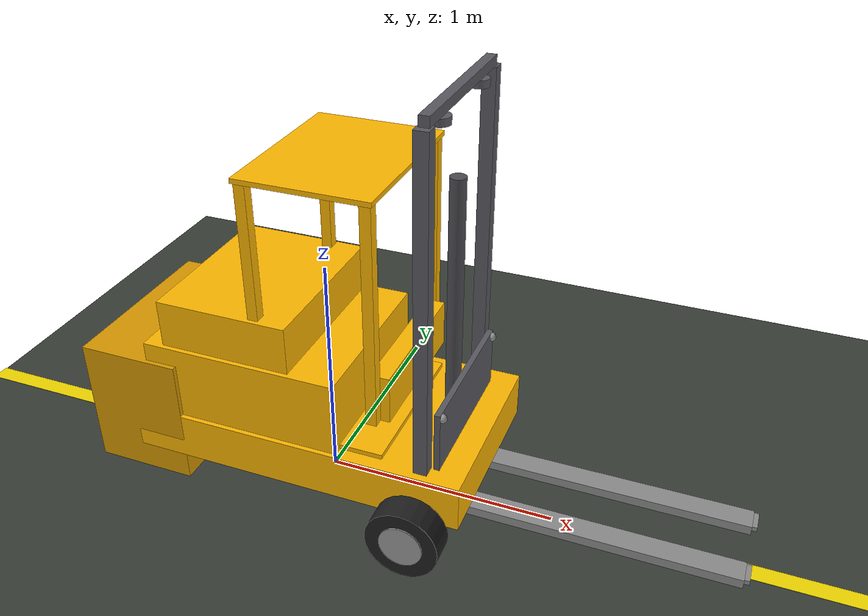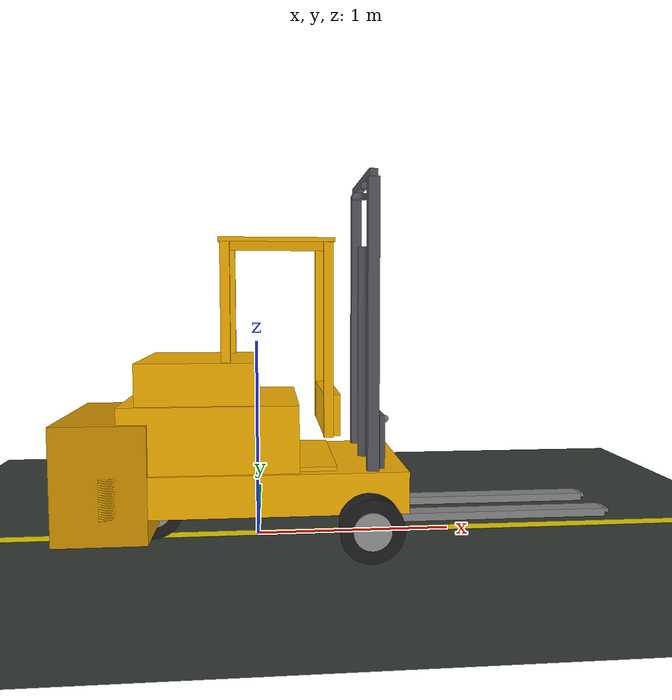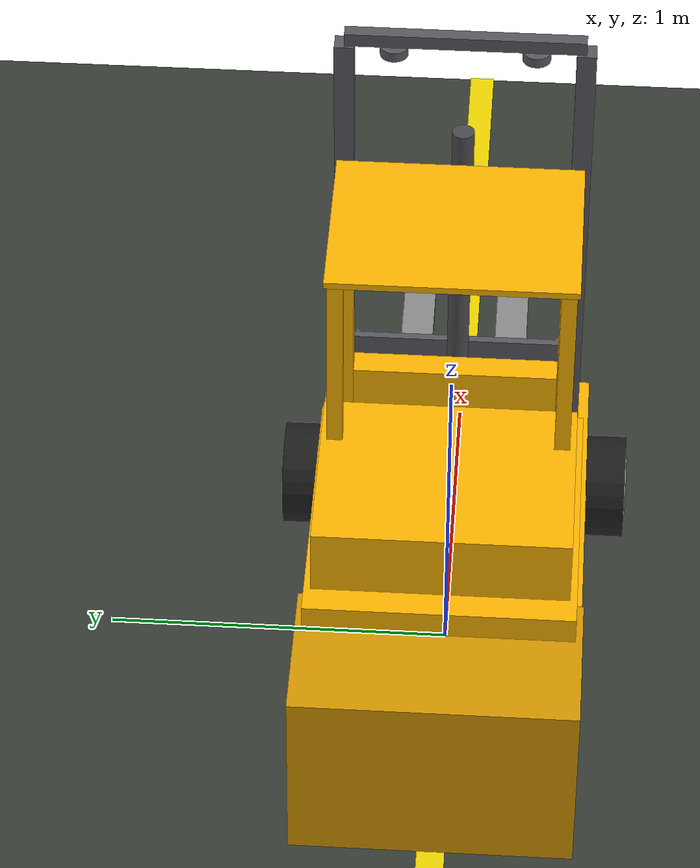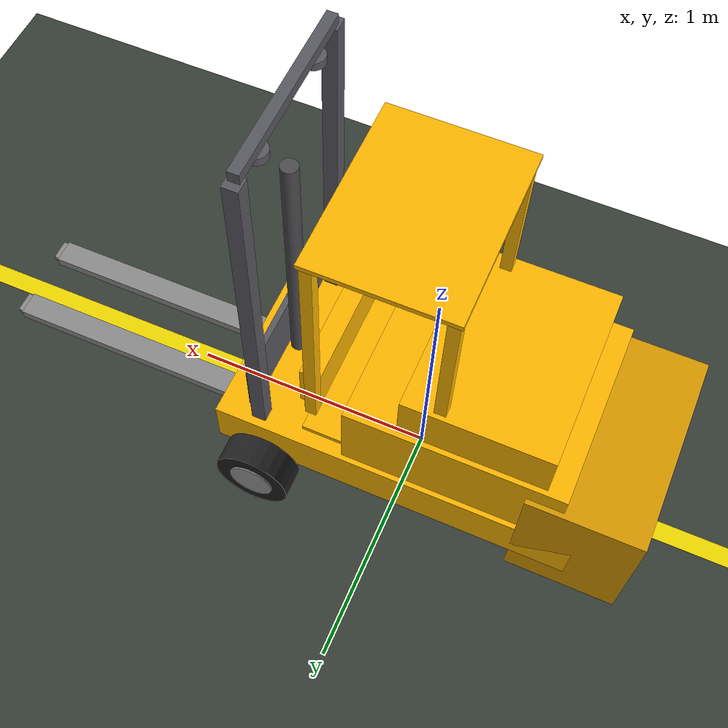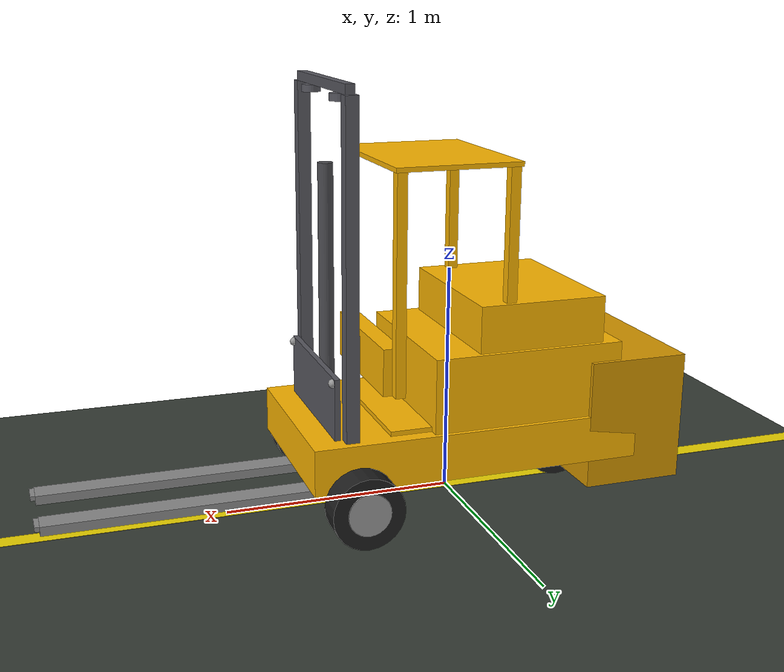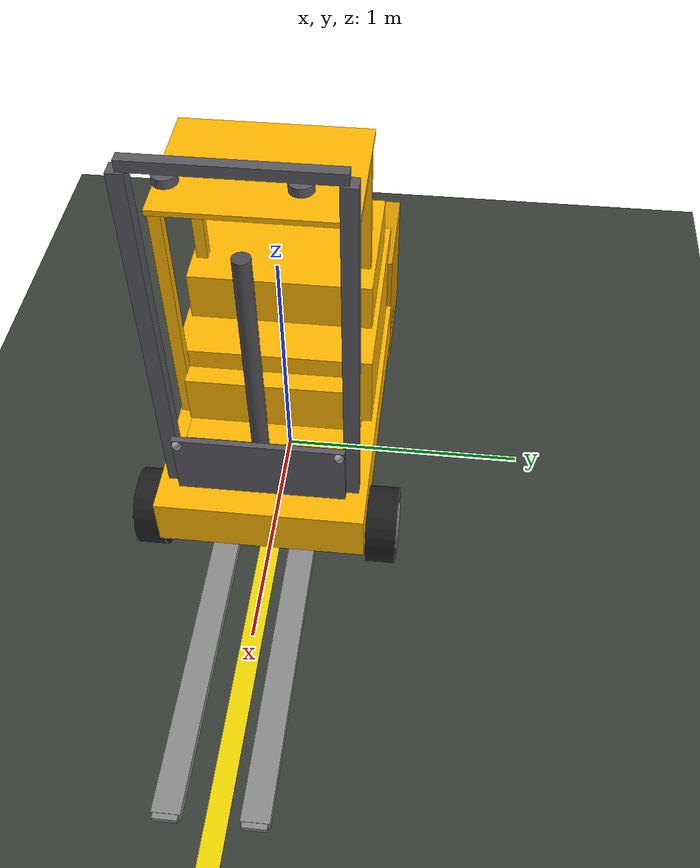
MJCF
<mujoco model="forklift_agv_1MBV15R30">
  <compiler angle="radian" autolimits="true"/>

  <option timestep="0.002" gravity="0 0 -9.81" integrator="implicitfast">
    <flag warmstart="enable"/>
  </option>

  <visual>
    <global offwidth="1920" offheight="1080"/>
  </visual>

  <default>
    <joint damping="80"/>
    <geom condim="4" friction="1.0 0.005 0.001" solimp="0.95 0.99 0.001 0.5 2" solref="0.01 1"/>
    <default class="wheel">
      <geom condim="4" friction="1.0 0.005 0.002" priority="1"
            solimp="0.95 0.99 0.001 0.5 2" solref="0.01 1"/>
    </default>
    <default class="fork">
      <geom friction="0.8 0.005 0.001" solimp="0.95 0.99 0.001 0.5 2" solref="0.01 1"/>
    </default>
    <default class="visual">
      <geom contype="0" conaffinity="0"/>
    </default>
  </default>

  <asset>
    <texture type="2d" name="groundplane" builtin="checker"
             rgb1="0.25 0.28 0.25" rgb2="0.18 0.20 0.18" width="512" height="512"/>
    <material name="groundplane" texture="groundplane" texrepeat="8 8" texuniform="true"/>
    <material name="chassis" rgba="1.0 0.72 0.0 1"/>
    <material name="counterweight" rgba="0.85 0.60 0.0 1"/>
    <material name="wheel_rubber" rgba="0.12 0.12 0.12 1"/>
    <material name="wheel_rim" rgba="0.6 0.6 0.6 1"/>
    <material name="fork_steel" rgba="0.55 0.55 0.55 1"/>
    <material name="mast_steel" rgba="0.35 0.35 0.38 1"/>
    <material name="guard" rgba="1.0 0.72 0.0 0.9"/>
    <material name="hydraulic" rgba="0.3 0.3 0.32 1"/>
    <material name="payload" rgba="0.6 0.45 0.3 1"/>
  </asset>

  <worldbody>
    <light directional="true" pos="3 3 8" dir="-0.3 -0.3 -1"
           diffuse="0.9 0.9 0.85" specular="0.3 0.3 0.3"/>
    <light directional="true" pos="-3 -3 6" dir="0.3 0.3 -1"
           diffuse="0.3 0.3 0.35"/>

    <geom name="ground" type="plane" size="25 25 0.1" material="groundplane"
          contype="1" conaffinity="30"/>

    <!-- Yellow guide line (visual only) — straight line at y=0 along x,
         tracked by the simulated front_low camera in the bridge. -->
    <geom name="guide_line" type="box" class="visual"
          size="20.0 0.04 0.001" pos="0 0 0.002"
          rgba="0.95 0.85 0.0 1"/>

    <!-- CHASSIS — origin between axles, 0.30m above ground               -->
    <!-- Front axle (2 drive) X=+0.528  |  Rear axle (1 steer) X=-0.528  -->
    <body name="chassis" pos="0 0 0.30">
      <freejoint name="root"/>
      <inertial pos="-0.10 0 0.06" mass="3200" diaginertia="500 900 1100"/>

      <!-- Lower chassis frame -->
      <geom name="chassis_lower" type="box"
            size="0.72 0.40 0.10" pos="0 0 0"
            material="chassis" mass="1100"
            contype="8" conaffinity="17"/>

      <!-- Upper chassis / operator area -->
      <geom name="chassis_upper" type="box"
            size="0.42 0.38 0.16" pos="-0.22 0 0.26"
            material="chassis" mass="350"
            contype="8" conaffinity="17"/>

      <!-- Counterweight (rear) -->
      <geom name="counterweight" type="box"
            size="0.22 0.40 0.28" pos="-0.72 0 0.06"
            material="counterweight" mass="1100"
            contype="8" conaffinity="17"/>

      <!-- Battery compartment -->
      <geom name="battery_box" type="box"
            size="0.28 0.36 0.18" pos="-0.28 0 0.44"
            material="chassis" mass="400"
            contype="8" conaffinity="17"/>

      <!-- Operator platform -->
      <geom name="operator_floor" type="box" class="visual"
            size="0.28 0.34 0.01" pos="0.10 0 0.11"
            material="chassis" mass="30"/>

      <!-- Overhead guard -->
      <geom name="guard_fl" type="box" class="visual"
            size="0.022 0.022 0.46" pos="0.34 0.32 0.72" material="guard" mass="6"/>
      <geom name="guard_fr" type="box" class="visual"
            size="0.022 0.022 0.46" pos="0.34 -0.32 0.72" material="guard" mass="6"/>
      <geom name="guard_rl" type="box" class="visual"
            size="0.022 0.022 0.46" pos="-0.14 0.32 0.72" material="guard" mass="6"/>
      <geom name="guard_rr" type="box" class="visual"
            size="0.022 0.022 0.46" pos="-0.14 -0.32 0.72" material="guard" mass="6"/>
      <geom name="guard_roof" type="box" class="visual"
            size="0.27 0.35 0.01" pos="0.10 0 1.19" material="guard" mass="20"/>

      <!-- Dash panel -->
      <geom name="dash" type="box" class="visual"
            size="0.04 0.30 0.10" pos="0.36 0 0.36" material="chassis" mass="15"/>

      <!-- FRONT DRIVE WHEELS (2x, fork side)                           -->
      <!-- R=152.5mm, W=120mm, track=918mm                              -->
      <body name="wheel_fl" pos="0.528 0.459 -0.1475">
        <joint name="drive_fl" type="hinge" axis="0 1 0" damping="8"/>
        <geom name="tire_fl" type="cylinder" class="wheel"
              size="0.1525 0.06" euler="1.5708 0 0"
              material="wheel_rubber" mass="14"
              contype="2" conaffinity="17"/>
        <geom name="rim_fl" type="cylinder" class="visual"
              size="0.09 0.065" euler="1.5708 0 0"
              material="wheel_rim" mass="6"/>
      </body>

      <body name="wheel_fr" pos="0.528 -0.459 -0.1475">
        <joint name="drive_fr" type="hinge" axis="0 1 0" damping="8"/>
        <geom name="tire_fr" type="cylinder" class="wheel"
              size="0.1525 0.06" euler="1.5708 0 0"
              material="wheel_rubber" mass="14"
              contype="2" conaffinity="17"/>
        <geom name="rim_fr" type="cylinder" class="visual"
              size="0.09 0.065" euler="1.5708 0 0"
              material="wheel_rim" mass="6"/>
      </body>

      <!-- REAR STEER WHEEL (1x, centered, counterweight side)          -->
      <!-- R=153mm, W=110mm                                             -->
      <body name="rear_steer" pos="-0.528 0 -0.147">
        <inertial pos="0 0 0" mass="2" diaginertia="0.01 0.01 0.01"/>
        <joint name="steering" type="hinge" axis="0 0 1"
               range="-1.22 1.22" damping="250" stiffness="40"/>

        <body name="rear_wheel" pos="0 0 0">
          <joint name="roll_rear" type="hinge" axis="0 1 0" damping="12"/>
          <geom name="tire_rear" type="cylinder" class="wheel"
                size="0.153 0.055" euler="1.5708 0 0"
                material="wheel_rubber" mass="18"
                contype="2" conaffinity="17"/>
          <geom name="rim_rear" type="cylinder" class="visual"
                size="0.095 0.058" euler="1.5708 0 0"
                material="wheel_rim" mass="8"/>
        </body>
      </body>

      <!-- MAST ASSEMBLY (at front, tiltable)                           -->
      <body name="mast" pos="0.55 0 -0.02">
        <joint name="tilt" type="hinge" axis="0 1 0"
               range="-0.105 0.070" damping="2500" stiffness="2000" armature="50"/>

        <geom name="mast_left" type="box" class="visual"
              size="0.028 0.028 0.75" pos="0 0.34 0.75"
              material="mast_steel" mass="55"/>
        <geom name="mast_right" type="box" class="visual"
              size="0.028 0.028 0.75" pos="0 -0.34 0.75"
              material="mast_steel" mass="55"/>
        <geom name="mast_top_bar" type="box" class="visual"
              size="0.02 0.34 0.02" pos="0 0 1.52"
              material="mast_steel" mass="12"/>
        <geom name="mast_bot_bar" type="box" class="visual"
              size="0.02 0.26 0.02" pos="0 0 0.02"
              material="mast_steel" mass="10"/>
        <geom name="pulley_l" type="cylinder" class="visual"
              size="0.04 0.015" pos="0 0.20 1.48"
              material="mast_steel" mass="3"/>
        <geom name="pulley_r" type="cylinder" class="visual"
              size="0.04 0.015" pos="0 -0.20 1.48"
              material="mast_steel" mass="3"/>
        <geom name="hydraulic_cyl" type="cylinder" class="visual"
              size="0.032 0.58" pos="0 0 0.62"
              material="hydraulic" mass="25"/>

        <!-- FORK CARRIAGE -->
        <body name="carriage" pos="0.05 0 0">
          <joint name="lift" type="slide" axis="0 0 1"
                 range="0 1.2" damping="2500" stiffness="80"/>

          <geom name="carriage_plate" type="box" class="visual"
                size="0.012 0.32 0.18" pos="0 0 0.20"
                material="mast_steel" mass="45"/>
          <geom name="roller_tl" type="sphere" class="visual"
                size="0.018" pos="0.014 0.30 0.36" material="wheel_rim" mass="1"/>
          <geom name="roller_tr" type="sphere" class="visual"
                size="0.018" pos="0.014 -0.30 0.36" material="wheel_rim" mass="1"/>
          <geom name="roller_bl" type="sphere" class="visual"
                size="0.018" pos="0.014 0.30 0.04" material="wheel_rim" mass="1"/>
          <geom name="roller_br" type="sphere" class="visual"
                size="0.018" pos="0.014 -0.30 0.04" material="wheel_rim" mass="1"/>

          <!-- FORKS (L-shaped, 1150mm long, 100mm wide, 40mm thick) -->
          <!-- LEFT FORK -->
          <geom name="fork_l_heel" type="box" class="fork"
                size="0.02 0.05 0.095" pos="0.03 0.15 -0.085"
                material="fork_steel" mass="10"
                contype="4" conaffinity="17"/>
          <geom name="fork_l_tine" type="box" class="fork"
                size="0.575 0.05 0.02" pos="0.605 0.15 -0.160"
                material="fork_steel" mass="24"
                contype="4" conaffinity="17"/>
          <geom name="fork_l_tip" type="box" class="fork"
                size="0.04 0.043 0.010" pos="1.16 0.15 -0.152"
                material="fork_steel" mass="2"
                contype="4" conaffinity="17"/>

          <!-- RIGHT FORK -->
          <geom name="fork_r_heel" type="box" class="fork"
                size="0.02 0.05 0.095" pos="0.03 -0.15 -0.085"
                material="fork_steel" mass="10"
                contype="4" conaffinity="17"/>
          <geom name="fork_r_tine" type="box" class="fork"
                size="0.575 0.05 0.02" pos="0.605 -0.15 -0.160"
                material="fork_steel" mass="24"
                contype="4" conaffinity="17"/>
          <geom name="fork_r_tip" type="box" class="fork"
                size="0.04 0.043 0.010" pos="1.16 -0.15 -0.152"
                material="fork_steel" mass="2"
                contype="4" conaffinity="17"/>
        </body>
      </body>
    </body>

  </worldbody>

  <tendon>
    <!-- Mechanically couple the two front wheels so a single 'drive' motor
         applies equal torque to both. Real forklift has one drivetrain. -->
    <fixed name="drive_axle">
      <joint joint="drive_fl" coef="1.0"/>
      <joint joint="drive_fr" coef="1.0"/>
    </fixed>
  </tendon>

  <actuator>
    <!-- Unified drive (single throttle, both front wheels) -->
    <motor name="drive" tendon="drive_axle" gear="1000" ctrlrange="-1 1" ctrllimited="true"/>

    <!-- Rear steering -->
    <position name="steer" joint="steering" kp="6000" ctrlrange="-1.22 1.22" ctrllimited="true"/>

    <!-- Mast tilt -->
    <position name="mast_tilt" joint="tilt" kp="12000" ctrlrange="-0.105 0.070" ctrllimited="true"/>

    <!-- Fork lift -->
    <position name="fork_lift" joint="lift" kp="8000" kv="1500" ctrlrange="0 1.2" ctrllimited="true"/>
  </actuator>

  <sensor>
    <jointpos name="s_steer_angle" joint="steering"/>
    <jointpos name="s_lift_height" joint="lift"/>
    <jointpos name="s_tilt_angle" joint="tilt"/>
    <jointvel name="s_drive_fl" joint="drive_fl"/>
    <jointvel name="s_drive_fr" joint="drive_fr"/>
    <jointvel name="s_roll_rear" joint="roll_rear"/>
    <framepos name="s_chassis_pos" objtype="body" objname="chassis"/>
    <framequat name="s_chassis_quat" objtype="body" objname="chassis"/>
    <framepos name="s_fork_tip" objtype="geom" objname="fork_l_tip"/>
  </sensor>
</mujoco>
